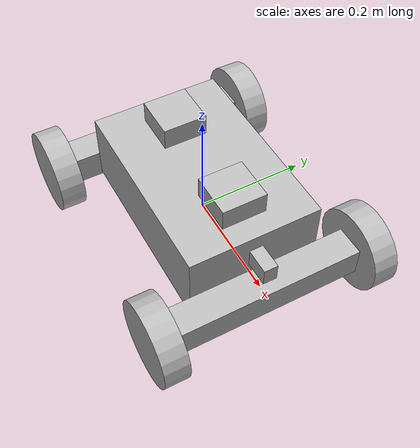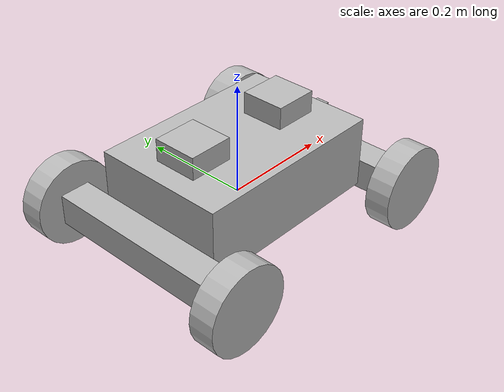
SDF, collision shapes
<?xml version="1.0"?>
<sdf version="1.7">

	<model name="pb_navigation_robot">

		<link name="base_footprint" />
		<joint name="base_to_chassis" type="fixed">
			<pose>0 0 0.076 0 0 0</pose>
			<parent>base_footprint</parent>
			<child>chassis</child>
		</joint>
		<link name="chassis">
			<inertial>

				<pose>0 0 0.055 0 0 0</pose>
				<mass>15.0</mass>
				<inertia>
					<ixx>0.093125</ixx>
					<ixy>0</ixy>
					<ixz>0</ixz>
					<iyy>0.18312499999999998</iyy>
					<iyz>0</iyz>
					<izz>0.23399999999999999</izz>
				</inertia>
			</inertial>

			<visual name="chassis_visual">
				<pose>0 0 0.045 0 0 0</pose>
				<geometry>
					<box>
						<size>0.36 0.24 0.13</size>
					</box>
				</geometry>
			</visual>
			<collision name="chassis_base_collision">
				<pose>0 0 0.045 0 0 0</pose>
				<geometry>
					<box>
						<size>0.36 0.24 0.13</size>
					</box>
				</geometry>
			</collision>
			<collision name="chassis_fornt_wheel_holder_collision">
				<pose>0.208 0 0 0 0 0</pose>
				<geometry>
					<box>
						<size>0.055 0.367 0.055</size>
					</box>
				</geometry>
			</collision>
			<collision name="chassis_rear_wheel_holder_collision">
				<pose>-0.208 0 0 0 0 0</pose>
				<geometry>
					<box>
						<size>0.055 0.367 0.055</size>
					</box>
				</geometry>
			</collision>
			<sensor name="chassis_imu" type="imu">
				<always_on>1</always_on>
				<update_rate>200</update_rate>
			<topic>/robot/imu</topic></sensor>
		</link>

		<joint name="front_left_wheel_joint" type="revolute">
			<pose relative_to="chassis">0.207 0.194 0 0 0 0</pose>
			<parent>chassis</parent>
			<child>front_left_wheel</child>
			<axis>
				<xyz>0 1 0</xyz>
				<limit>
					<lower>-1.79769e+308</lower>
					<upper>1.79769e+308</upper>
					<effort>1e+10</effort>
					<velocity>1e+10</velocity>
				</limit>
			</axis>
		</joint>
		<link name="front_left_wheel">
			<pose relative_to="front_left_wheel_joint">0 0 0 0 0 0</pose>
			<inertial>
				<pose>0 0 0 1.5707 0 0</pose>
				<mass>0.4</mass>
				<inertia>
					<ixx>0.0006426653333333334</ixx>
					<ixy>0</ixy>
					<ixz>0</ixz>
					<iyy>0.0006426653333333334</iyy>
					<iyz>0</iyz>
					<izz>0.0011491280000000001</izz>
				</inertia>
			</inertial>
			<visual name="front_left_wheel_visual">
				<geometry>
					<mesh>
						<uri>model://rmua19_standard_robot/meshes/wheel_left.dae</uri>
					</mesh>
				</geometry>
			</visual>
			<collision name="front_left_wheel_collision">
				<pose>0 0 0 1.5707 0 0</pose>
				<geometry>
					<cylinder>
						<radius>0.0758</radius>
						<length>0.0452</length>
					</cylinder>
				</geometry>
				<surface>
					<friction>
						<ode>
							<mu>0.2</mu>
							<mu2>0.2</mu2>
						</ode>
					</friction>
				</surface>
			</collision>
		</link>
		<joint name="front_right_wheel_joint" type="revolute">
			<pose relative_to="chassis">0.207 -0.194 0 0 0 0</pose>
			<parent>chassis</parent>
			<child>front_right_wheel</child>
			<axis>
				<xyz>0 1 0</xyz>
				<limit>
					<lower>-1.79769e+308</lower>
					<upper>1.79769e+308</upper>
					<effort>1e+10</effort>
					<velocity>1e+10</velocity>
				</limit>
			</axis>
		</joint>
		<link name="front_right_wheel">
			<pose relative_to="front_right_wheel_joint">0 0 0 0 0 0</pose>
			<inertial>
				<pose>0 0 0 1.5707 0 0</pose>
				<mass>0.4</mass>
				<inertia>
					<ixx>0.0006426653333333334</ixx>
					<ixy>0</ixy>
					<ixz>0</ixz>
					<iyy>0.0006426653333333334</iyy>
					<iyz>0</iyz>
					<izz>0.0011491280000000001</izz>
				</inertia>
			</inertial>
			<visual name="front_right_wheel_visual">
				<geometry>
					<mesh>
						<uri>model://rmua19_standard_robot/meshes/wheel_right.dae</uri>
					</mesh>
				</geometry>
			</visual>
			<collision name="front_right_wheel_collision">
				<pose>0 0 0 1.5707 0 0</pose>
				<geometry>
					<cylinder>
						<radius>0.0758</radius>
						<length>0.0452</length>
					</cylinder>
				</geometry>
				<surface>
					<friction>
						<ode>
							<mu>0.2</mu>
							<mu2>0.2</mu2>
						</ode>
					</friction>
				</surface>
			</collision>
		</link>
		<joint name="rear_left_wheel_joint" type="revolute">
			<pose relative_to="chassis">-0.207 0.194 0 0 0 0</pose>
			<parent>chassis</parent>
			<child>rear_left_wheel</child>
			<axis>
				<xyz>0 1 0</xyz>
				<limit>
					<lower>-1.79769e+308</lower>
					<upper>1.79769e+308</upper>
					<effort>1e+10</effort>
					<velocity>1e+10</velocity>
				</limit>
			</axis>
		</joint>
		<link name="rear_left_wheel">
			<pose relative_to="rear_left_wheel_joint">0 0 0 0 0 0</pose>
			<inertial>
				<pose>0 0 0 1.5707 0 0</pose>
				<mass>0.4</mass>
				<inertia>
					<ixx>0.0006426653333333334</ixx>
					<ixy>0</ixy>
					<ixz>0</ixz>
					<iyy>0.0006426653333333334</iyy>
					<iyz>0</iyz>
					<izz>0.0011491280000000001</izz>
				</inertia>
			</inertial>
			<visual name="rear_left_wheel_visual">
				<geometry>
					<mesh>
						<uri>model://rmua19_standard_robot/meshes/wheel_right.dae</uri>
					</mesh>
				</geometry>
			</visual>
			<collision name="rear_left_wheel_collision">
				<pose>0 0 0 1.5707 0 0</pose>
				<geometry>
					<cylinder>
						<radius>0.0758</radius>
						<length>0.0452</length>
					</cylinder>
				</geometry>
				<surface>
					<friction>
						<ode>
							<mu>0.2</mu>
							<mu2>0.2</mu2>
						</ode>
					</friction>
				</surface>
			</collision>
		</link>
		<joint name="rear_right_wheel_joint" type="revolute">
			<pose relative_to="chassis">-0.207 -0.194 0 0 0 0</pose>
			<parent>chassis</parent>
			<child>rear_right_wheel</child>
			<axis>
				<xyz>0 1 0</xyz>
				<limit>
					<lower>-1.79769e+308</lower>
					<upper>1.79769e+308</upper>
					<effort>1e+10</effort>
					<velocity>1e+10</velocity>
				</limit>
			</axis>
		</joint>
		<link name="rear_right_wheel">
			<pose relative_to="rear_right_wheel_joint">0 0 0 0 0 0</pose>
			<inertial>
				<pose>0 0 0 1.5707 0 0</pose>
				<mass>0.4</mass>
				<inertia>
					<ixx>0.0006426653333333334</ixx>
					<ixy>0</ixy>
					<ixz>0</ixz>
					<iyy>0.0006426653333333334</iyy>
					<iyz>0</iyz>
					<izz>0.0011491280000000001</izz>
				</inertia>
			</inertial>
			<visual name="rear_right_wheel_visual">
				<geometry>
					<mesh>
						<uri>model://rmua19_standard_robot/meshes/wheel_left.dae</uri>
					</mesh>
				</geometry>
			</visual>
			<collision name="rear_right_wheel_collision">
				<pose>0 0 0 1.5707 0 0</pose>
				<geometry>
					<cylinder>
						<radius>0.0758</radius>
						<length>0.0452</length>
					</cylinder>
				</geometry>
				<surface>
					<friction>
						<ode>
							<mu>0.2</mu>
							<mu2>0.2</mu2>
						</ode>
					</friction>
				</surface>
			</collision>
		</link>

		<joint name="front_rplidar_a2_joint" type="fixed">
			<pose relative_to="chassis">-0.10 0 0.11 0 0 0</pose>
			<parent>chassis</parent>
			<child>front_rplidar_a2</child>
		</joint>
		<link name="front_rplidar_a2">
			<pose relative_to="front_rplidar_a2_joint">0 0 0 0 0 0</pose>
			<inertial>
				<pose>0 0 0.02 0 0 0</pose>
				<mass>0.15</mass>
				<inertia>
					<ixx>9.999999999999999e-05</ixx>
					<ixy>0</ixy>
					<ixz>0</ixz>
					<iyy>9.999999999999999e-05</iyy>
					<iyz>0</iyz>
					<izz>0.00016</izz>
				</inertia>
			</inertial>
			<visual name="visual">
				<pose>0 0 0.02 0 0 0</pose>
				<geometry>
					<box>
						<size>0.08 0.08 0.04</size>
					</box>
				</geometry>
			</visual>
			<collision name="collision">
				<pose>0 0 0.02 0 0 0</pose>
				<geometry>
					<box>
						<size>0.08 0.08 0.04</size>
					</box>
				</geometry>
			</collision>
			<sensor name="front_rplidar_a2" type="gpu_lidar">
				<ignition_frame_id>front_rplidar_a2</ignition_frame_id>
				<pose>0 0 0.03 0 0 0</pose>
				<always_on>true</always_on>
				<visualize>true</visualize>
				<update_rate>10.0</update_rate>
				<ray>
					<scan>
						<horizontal>
							<samples>400.0</samples>
							<resolution>1.0</resolution>
							<min_angle>0</min_angle>
							<max_angle>6.28000020980835</max_angle>
						</horizontal>
					</scan>
					<range>
						<min>0.15</min>
						<max>12.0</max>
					</range>
				</ray>
				<noise>
					<type>gaussian</type>
					<mean>0.0</mean>
					<stddev>0.01</stddev>
				</noise>
			<topic>/robot/scan</topic></sensor>
		</link>
		<joint name="front_livox_joint" type="fixed">
			<pose relative_to="chassis">0.10 0 0.11 0 0 0</pose>
			<parent>chassis</parent>
			<child>front_mid360</child>
		</joint>
		<link name="front_mid360">
			<pose relative_to="front_livox_joint">0 0 0 0 0 0</pose>
			<inertial>
				<pose>0 0 0.02 0 0 0</pose>
				<mass>0.15</mass>
				<inertia>
					<ixx>9.999999999999999e-05</ixx>
					<ixy>0</ixy>
					<ixz>0</ixz>
					<iyy>9.999999999999999e-05</iyy>
					<iyz>0</iyz>
					<izz>0.00016</izz>
				</inertia>
			</inertial>
			<visual name="visual">
				<pose>0 0 0.02 0 0 0</pose>
				<geometry>
					<box>
						<size>0.08 0.08 0.04</size>
					</box>
				</geometry>
			</visual>
			<collision name="collision">
				<pose>0 0 0.02 0 0 0</pose>
				<geometry>
					<box>
						<size>0.08 0.08 0.04</size>
					</box>
				</geometry>
			</collision>
			<sensor name="front_mid360_imu" type="imu">
				<ignition_frame_id>front_mid360</ignition_frame_id>
				<always_on>1</always_on>
				<update_rate>200</update_rate>
				<visualize>true</visualize>
			</sensor>
			<sensor name="front_mid360_lidar" type="gpu_lidar">
				<ignition_frame_id>front_mid360</ignition_frame_id>
				<pose>0 0 0.03 0 0 0</pose>
				<always_on>true</always_on>
				<visualize>true</visualize>
				<update_rate>20.0</update_rate>
				<ray>
					<scan>
						<horizontal>
							<samples>1875.0</samples>
							<resolution>1.0</resolution>
							<min_angle>0</min_angle>
							<max_angle>6.2831852</max_angle>
						</horizontal>
						<vertical>
							<samples>32</samples>
							<min_angle>-0.12217304764</min_angle>
							<max_angle>0.90757121104</max_angle>
						</vertical>
					</scan>
					<range>
						<min>0.1</min>
						<max>40.0</max>
					</range>
				</ray>
				<noise>
					<type>gaussian</type>
					<mean>0.0</mean>
					<stddev>0.01</stddev>
				</noise>
			<topic>/robot/cloud/points</topic></sensor>
		</link>
		<joint name="front_industrial_camera_joint" type="fixed">
			<pose relative_to="chassis">0.16 0 0.065 0 0 0</pose>
			<parent>chassis</parent>
			<child>front_industrial_camera</child>
		</joint>
		<link name="front_industrial_camera">
			<pose relative_to="front_industrial_camera_joint">0 0 0 0 0 0</pose>
			<inertial>
				<pose>0.025 0 0 0 0 0</pose>
				<mass>0.05</mass>
				<inertia>
					<ixx>7.141666666666669e-06</ixx>
					<ixy>0</ixy>
					<ixz>0</ixz>
					<iyy>3.1204166666666675e-05</iyy>
					<iyz>0</iyz>
					<izz>2.9270833333333334e-05</izz>
				</inertia>
			</inertial>
			<visual name="visual">
				<pose>0.025 0 0 0 0 0</pose>
				<geometry>
					<box>
						<size>0.08 0.025 0.033</size>
					</box>
				</geometry>
			</visual>
			<collision name="collision">
				<pose>0.025 0 0 0 0 0</pose>
				<geometry>
					<box>
						<size>0.08 0.025 0.033</size>
					</box>
				</geometry>
			</collision>
			<sensor name="front_industrial_camera" type="camera">
				<pose>0.045 0 0 0 0 0</pose>
				<always_on>1</always_on>
				<update_rate>30.0</update_rate>
				<camera>
					<optical_frame_id>front_industrial_camera_optical_frame</optical_frame_id>
					<horizontal_fov>1.0</horizontal_fov>
					<image>
						<width>1920.0</width>
						<height>1080.0</height>
					</image>
					<clip>
						<near>0.1</near>
						<far>100</far>
					</clip>
				</camera>
			<topic>/robot/camera/image</topic></sensor>
		</link>
		<joint name="front_industrial_camera_optical_joint" type="fixed">
			<pose relative_to="front_industrial_camera">0 0 0 -1.5707963267948966 0 -1.5707963267948966</pose>
			<parent>front_industrial_camera</parent>
			<child>front_industrial_camera_optical_frame</child>
		</joint>
		<link name="front_industrial_camera_optical_frame">
			<pose relative_to="front_industrial_camera_optical_joint">0 0 0 0 0 0</pose>
		</link>
		<plugin filename="ignition-gazebo-joint-state-publisher-system" name="ignition::gazebo::systems::JointStatePublisher">
			<topic>/robot/joint_states</topic>
		</plugin>
		<plugin filename="ignition-gazebo-pose-publisher-system" name="ignition::gazebo::systems::PosePublisher">
			<publish_link_pose>true</publish_link_pose>
			<publish_sensor_pose>false</publish_sensor_pose>
			<publish_visual_pose>false</publish_visual_pose>
			<publish_collision_pose>false</publish_collision_pose>
			<publish_model_pose>true</publish_model_pose>
			<use_pose_vector_msg>true</use_pose_vector_msg>
			<static_publisher>false</static_publisher>
			<update_frequency>50</update_frequency>
		</plugin>

		<plugin filename="MecanumDrive2" name="ignition::gazebo::systems::MecanumDrive2">
			<chassis_link>chassis</chassis_link>
			<front_left_joint>front_left_wheel_joint</front_left_joint>
			<front_right_joint>front_right_wheel_joint</front_right_joint>
			<rear_left_joint>rear_left_wheel_joint</rear_left_joint>
			<rear_right_joint>rear_right_wheel_joint</rear_right_joint>
		</plugin>

		<plugin filename="pb_chassis_truth_system" name="pb_gazebo_sim_support::ChassisTruth">
			<link_name>chassis</link_name>
			<topic>/pb_sim/chassis_truth</topic>
			<world_frame>rmuc2026_field</world_frame>
			<child_frame>chassis</child_frame>
			<publish_period_s>0.01</publish_period_s>
		</plugin>

		<plugin filename="pb_contact_diagnostics_system" name="pb_gazebo_sim_support::ContactDiagnostics">
			<enable>false</enable>
			<enable_actuator>true</enable_actuator>
			<enable_contact>true</enable_contact>
			<link_name>chassis</link_name>
			<joints>front_left_wheel_joint front_right_wheel_joint rear_left_wheel_joint rear_right_wheel_joint</joints>
			<topic_prefix>/pb_sim/diagnostics</topic_prefix>
			<publish_period_s>0.05</publish_period_s>
		</plugin>

	</model>
</sdf>
